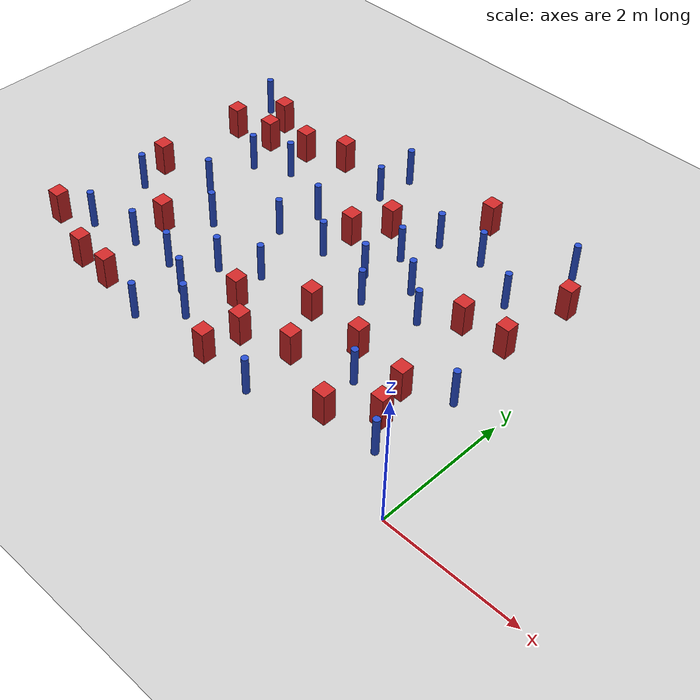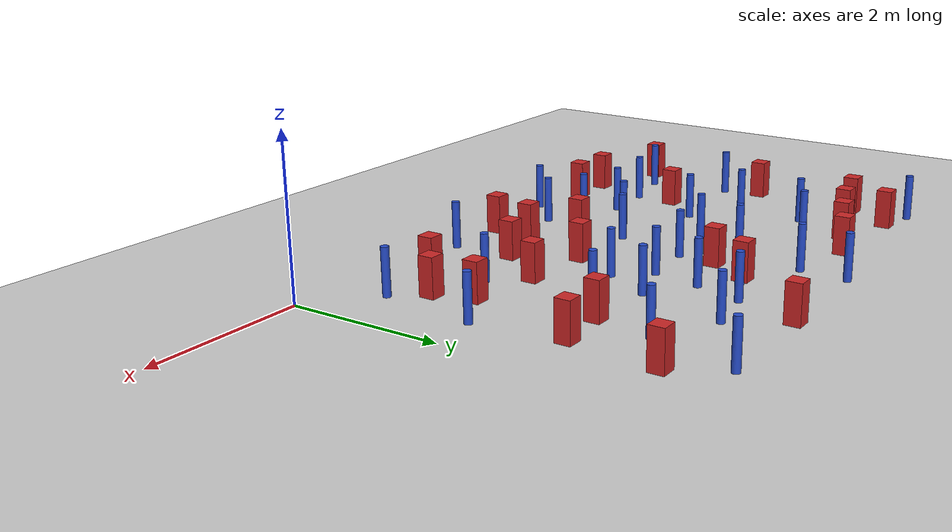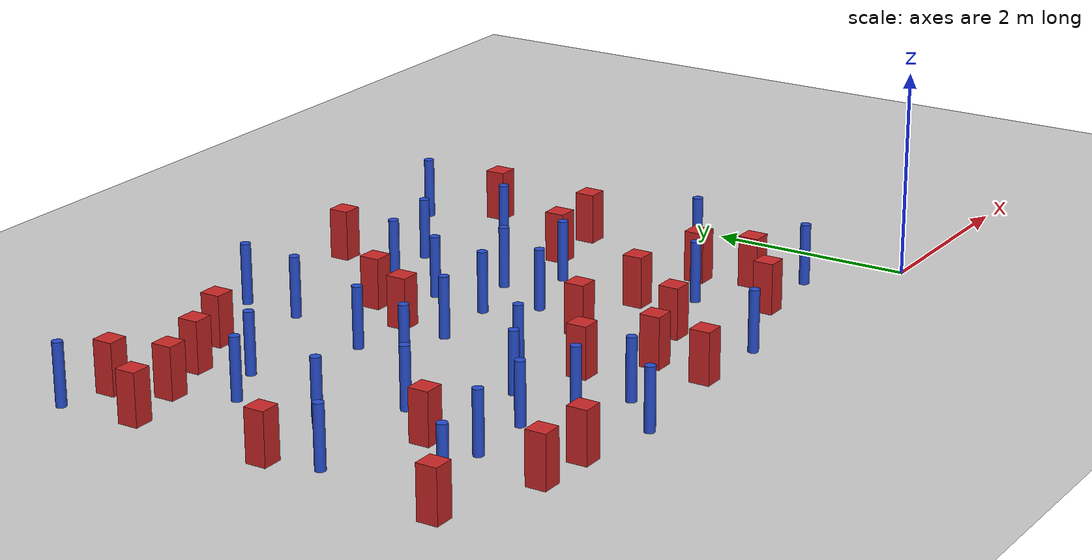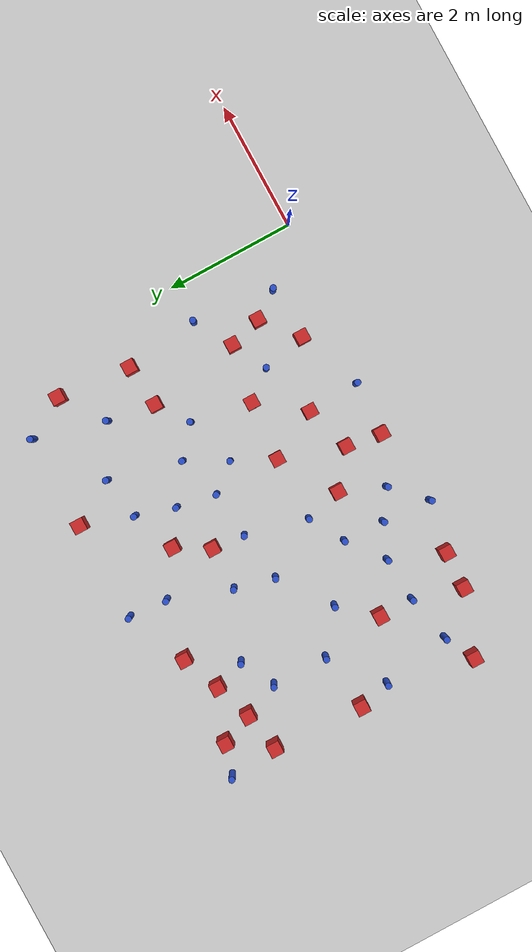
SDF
<sdf version="1.6">
 <world name="default">
  <model name="ground_plane">
   <static>1</static>
   <link name="link">
    <collision name="collision">
     <geometry><plane><normal>0 0 1</normal><size>100 100</size></plane></geometry>
     <surface><friction><ode><mu>100</mu><mu2>50</mu2></ode></friction></surface>
    </collision>
    <visual name="visual">
     <cast_shadows>0</cast_shadows>
     <geometry><plane><normal>0 0 1</normal><size>100 100</size></plane></geometry>
     <material>
      <ambient>1.0 1.0 1.0 1.0</ambient>
      <diffuse>0.8 0.8 0.8 1.0</diffuse>
      <specular>0.01 0.01 0.01 1.000000</specular>
     </material>
    </visual>
   </link>
  </model>
  <model name="pole_obstacle1">
   <static>true</static>
   <pose>-4.53239259562 2.68405552676 7.38925637345e-09 -8.47170692798e-08 1.24976764937e-08 -1.74513093023e-07</pose>
   <link name="link">
    <pose>0 0 0.3 0 -0 0</pose>
    <inertial>
     <mass>1</mass>
     <inertia><ixx>0.145833</ixx><ixy>0</ixy><ixz>0</ixz><iyy>0.145833</iyy><iyz>0</iyz><izz>0.125</izz></inertia>
    </inertial>
    <collision name="collision">
     <geometry><cylinder><radius>0.05</radius><length>.6</length></cylinder></geometry>
    </collision>
    <visual name="visual">
     <geometry><cylinder><radius>0.05</radius><length>.6</length></cylinder></geometry>
     <material>
      <script><name>Gazebo/Blue</name><uri>file://media/materials/scripts/gazebo.material</uri></script>
     </material>
    </visual>
   </link>
  </model>
  <model name="pole_obstacle4">
   <static>true</static>
   <pose>-1.00049105903 4.87308313826 7.38925637345e-09 -8.47170692799e-08 1.2497676505e-08 -1.74513093018e-07</pose>
   <link name="link">
    <pose>0 0 0.3 0 -0 0</pose>
    <inertial>
     <mass>1</mass>
     <inertia><ixx>0.145833</ixx><ixy>0</ixy><ixz>0</ixz><iyy>0.145833</iyy><iyz>0</iyz><izz>0.125</izz></inertia>
    </inertial>
    <collision name="collision">
     <geometry><cylinder><radius>0.05</radius><length>.6</length></cylinder></geometry>
    </collision>
    <visual name="visual">
     <geometry><cylinder><radius>0.05</radius><length>.6</length></cylinder></geometry>
     <material>
      <script><name>Gazebo/Blue</name><uri>file://media/materials/scripts/gazebo.material</uri></script>
     </material>
    </visual>
   </link>
  </model>
  <model name="pole_obstacle5">
   <static>true</static>
   <pose>-5.31654070944 2.11592072659 7.38925637345e-09 -8.47170692798e-08 1.24976764937e-08 -1.74513093023e-07</pose>
   <link name="link">
    <pose>0 0 0.3 0 -0 0</pose>
    <inertial>
     <mass>1</mass>
     <inertia><ixx>0.145833</ixx><ixy>0</ixy><ixz>0</ixz><iyy>0.145833</iyy><iyz>0</iyz><izz>0.125</izz></inertia>
    </inertial>
    <collision name="collision">
     <geometry><cylinder><radius>0.05</radius><length>.6</length></cylinder></geometry>
    </collision>
    <visual name="visual">
     <geometry><cylinder><radius>0.05</radius><length>.6</length></cylinder></geometry>
     <material>
      <script><name>Gazebo/Blue</name><uri>file://media/materials/scripts/gazebo.material</uri></script>
     </material>
    </visual>
   </link>
  </model>
  <model name="square_post_obstacle7">
   <static>true</static>
   <pose>-5.77643210052 1.59069159847 1.91545236811e-07 -7.35059704564e-06 1.12565212e-07 2.39332434364e-05</pose>
   <link name="link">
    <pose>0 0 0.25 0 -0 0</pose>
    <inertial>
     <mass>100</mass>
     <inertia>
      <ixx>0.166667</ixx>
      <ixy>0</ixy>
      <ixz>0</ixz>
      <iyy>0.166667</iyy>
      <iyz>0</iyz>
      <izz>0.166667</izz>
     </inertia>
    </inertial>
    <collision name="collision"><geometry><box><size>.2 .2 .5</size></box></geometry></collision>
    <visual name="visual">
     <geometry><box><size>.2 .2 .5</size></box></geometry>
     <material>
      <script><name>Gazebo/Red</name><uri>file://media/materials/scripts/gazebo.material</uri></script>
     </material>
    </visual>
   </link>
  </model>
  <model name="square_post_obstacle12">
   <static>true</static>
   <pose>-1.58455548169 0.633229365497 1.91545236811e-07 -7.35059704564e-06 1.12565212e-07 2.39332434364e-05</pose>
   <link name="link">
    <pose>0 0 0.25 0 -0 0</pose>
    <inertial>
     <mass>100</mass>
     <inertia>
      <ixx>0.166667</ixx>
      <ixy>0</ixy>
      <ixz>0</ixz>
      <iyy>0.166667</iyy>
      <iyz>0</iyz>
      <izz>0.166667</izz>
     </inertia>
    </inertial>
    <collision name="collision"><geometry><box><size>.2 .2 .5</size></box></geometry></collision>
    <visual name="visual">
     <geometry><box><size>.2 .2 .5</size></box></geometry>
     <material>
      <script><name>Gazebo/Red</name><uri>file://media/materials/scripts/gazebo.material</uri></script>
     </material>
    </visual>
   </link>
  </model>
  <model name="square_post_obstacle13">
   <static>true</static>
   <pose>-4.95018046901 4.452941867 1.91545236811e-07 -7.35059704564e-06 1.12565212e-07 2.39332434364e-05</pose>
   <link name="link">
    <pose>0 0 0.25 0 -0 0</pose>
    <inertial>
     <mass>100</mass>
     <inertia>
      <ixx>0.166667</ixx>
      <ixy>0</ixy>
      <ixz>0</ixz>
      <iyy>0.166667</iyy>
      <iyz>0</iyz>
      <izz>0.166667</izz>
     </inertia>
    </inertial>
    <collision name="collision"><geometry><box><size>.2 .2 .5</size></box></geometry></collision>
    <visual name="visual">
     <geometry><box><size>.2 .2 .5</size></box></geometry>
     <material>
      <script><name>Gazebo/Red</name><uri>file://media/materials/scripts/gazebo.material</uri></script>
     </material>
    </visual>
   </link>
  </model>
  <model name="pole_obstacle18">
   <static>true</static>
   <pose>-0.608284305371 1.93709716667 7.38925637345e-09 -8.47170692799e-08 1.24976765033e-08 -1.7451309302e-07</pose>
   <link name="link">
    <pose>0 0 0.3 0 -0 0</pose>
    <inertial>
     <mass>1</mass>
     <inertia><ixx>0.145833</ixx><ixy>0</ixy><ixz>0</ixz><iyy>0.145833</iyy><iyz>0</iyz><izz>0.125</izz></inertia>
    </inertial>
    <collision name="collision">
     <geometry><cylinder><radius>0.05</radius><length>.6</length></cylinder></geometry>
    </collision>
    <visual name="visual">
     <geometry><cylinder><radius>0.05</radius><length>.6</length></cylinder></geometry>
     <material>
      <script><name>Gazebo/Blue</name><uri>file://media/materials/scripts/gazebo.material</uri></script>
     </material>
    </visual>
   </link>
  </model>
  <model name="square_post_obstacle29">
   <static>true</static>
   <pose>-6.81865044421 2.47655447891 1.91545236811e-07 -7.35059704564e-06 1.12565212e-07 2.39332434364e-05</pose>
   <link name="link">
    <pose>0 0 0.25 0 -0 0</pose>
    <inertial>
     <mass>100</mass>
     <inertia>
      <ixx>0.166667</ixx>
      <ixy>0</ixy>
      <ixz>0</ixz>
      <iyy>0.166667</iyy>
      <iyz>0</iyz>
      <izz>0.166667</izz>
     </inertia>
    </inertial>
    <collision name="collision"><geometry><box><size>.2 .2 .5</size></box></geometry></collision>
    <visual name="visual">
     <geometry><box><size>.2 .2 .5</size></box></geometry>
     <material>
      <script><name>Gazebo/Red</name><uri>file://media/materials/scripts/gazebo.material</uri></script>
     </material>
    </visual>
   </link>
  </model>
  <model name="square_post_obstacle31">
   <static>true</static>
   <pose>-2.99724778428 1.81902709371 1.91545236811e-07 -7.35059704564e-06 1.12565212e-07 2.39332434364e-05</pose>
   <link name="link">
    <pose>0 0 0.25 0 -0 0</pose>
    <inertial>
     <mass>100</mass>
     <inertia>
      <ixx>0.166667</ixx>
      <ixy>0</ixy>
      <ixz>0</ixz>
      <iyy>0.166667</iyy>
      <iyz>0</iyz>
      <izz>0.166667</izz>
     </inertia>
    </inertial>
    <collision name="collision"><geometry><box><size>.2 .2 .5</size></box></geometry></collision>
    <visual name="visual">
     <geometry><box><size>.2 .2 .5</size></box></geometry>
     <material>
      <script><name>Gazebo/Red</name><uri>file://media/materials/scripts/gazebo.material</uri></script>
     </material>
    </visual>
   </link>
  </model>
  <model name="pole_obstacle25">
   <static>true</static>
   <pose>-3.99785983709 1.83050828539 7.38925637345e-09 -8.47170692808e-08 1.24976765605e-08 -1.74513093e-07</pose>
   <link name="link">
    <pose>0 0 0.3 0 -0 0</pose>
    <inertial>
     <mass>1</mass>
     <inertia><ixx>0.145833</ixx><ixy>0</ixy><ixz>0</ixz><iyy>0.145833</iyy><iyz>0</iyz><izz>0.125</izz></inertia>
    </inertial>
    <collision name="collision">
     <geometry><cylinder><radius>0.05</radius><length>.6</length></cylinder></geometry>
    </collision>
    <visual name="visual">
     <geometry><cylinder><radius>0.05</radius><length>.6</length></cylinder></geometry>
     <material>
      <script><name>Gazebo/Blue</name><uri>file://media/materials/scripts/gazebo.material</uri></script>
     </material>
    </visual>
   </link>
  </model>
  <model name="pole_obstacle31">
   <static>true</static>
   <pose>-5.38893590775 3.73306374062 7.38925637345e-09 -8.47170692798e-08 1.24976764937e-08 -1.74513093023e-07</pose>
   <link name="link">
    <pose>0 0 0.3 0 -0 0</pose>
    <inertial>
     <mass>1</mass>
     <inertia><ixx>0.145833</ixx><ixy>0</ixy><ixz>0</ixz><iyy>0.145833</iyy><iyz>0</iyz><izz>0.125</izz></inertia>
    </inertial>
    <collision name="collision">
     <geometry><cylinder><radius>0.05</radius><length>.6</length></cylinder></geometry>
    </collision>
    <visual name="visual">
     <geometry><cylinder><radius>0.05</radius><length>.6</length></cylinder></geometry>
     <material>
      <script><name>Gazebo/Blue</name><uri>file://media/materials/scripts/gazebo.material</uri></script>
     </material>
    </visual>
   </link>
  </model>
  <model name="pole_obstacle34">
   <static>true</static>
   <pose>-1.29308364775 3.76616444473 7.38925637345e-09 -8.47170692799e-08 1.24976765053e-08 -1.74513093017e-07</pose>
   <link name="link">
    <pose>0 0 0.3 0 -0 0</pose>
    <inertial>
     <mass>1</mass>
     <inertia><ixx>0.145833</ixx><ixy>0</ixy><ixz>0</ixz><iyy>0.145833</iyy><iyz>0</iyz><izz>0.125</izz></inertia>
    </inertial>
    <collision name="collision">
     <geometry><cylinder><radius>0.05</radius><length>.6</length></cylinder></geometry>
    </collision>
    <visual name="visual">
     <geometry><cylinder><radius>0.05</radius><length>.6</length></cylinder></geometry>
     <material>
      <script><name>Gazebo/Blue</name><uri>file://media/materials/scripts/gazebo.material</uri></script>
     </material>
    </visual>
   </link>
  </model>
  <model name="pole_obstacle36">
   <static>true</static>
   <pose>-5.92853335825 2.59436262317 7.38925637345e-09 -8.47170692798e-08 1.24976764937e-08 -1.74513093023e-07</pose>
   <link name="link">
    <pose>0 0 0.3 0 -0 0</pose>
    <inertial>
     <mass>1</mass>
     <inertia><ixx>0.145833</ixx><ixy>0</ixy><ixz>0</ixz><iyy>0.145833</iyy><iyz>0</iyz><izz>0.125</izz></inertia>
    </inertial>
    <collision name="collision">
     <geometry><cylinder><radius>0.05</radius><length>.6</length></cylinder></geometry>
    </collision>
    <visual name="visual">
     <geometry><cylinder><radius>0.05</radius><length>.6</length></cylinder></geometry>
     <material>
      <script><name>Gazebo/Blue</name><uri>file://media/materials/scripts/gazebo.material</uri></script>
     </material>
    </visual>
   </link>
  </model>
  <model name="square_post_obstacle36">
   <static>true</static>
   <pose>-2.46472115762 4.86826933062 1.91545236811e-07 -7.35059704564e-06 1.12565212e-07 2.39332434364e-05</pose>
   <link name="link">
    <pose>0 0 0.25 0 -0 0</pose>
    <inertial>
     <mass>100</mass>
     <inertia>
      <ixx>0.166667</ixx>
      <ixy>0</ixy>
      <ixz>0</ixz>
      <iyy>0.166667</iyy>
      <iyz>0</iyz>
      <izz>0.166667</izz>
     </inertia>
    </inertial>
    <collision name="collision"><geometry><box><size>.2 .2 .5</size></box></geometry></collision>
    <visual name="visual">
     <geometry><box><size>.2 .2 .5</size></box></geometry>
     <material>
      <script><name>Gazebo/Red</name><uri>file://media/materials/scripts/gazebo.material</uri></script>
     </material>
    </visual>
   </link>
  </model>
  <model name="square_post_obstacle47">
   <static>true</static>
   <pose>-5.99458879497 0.304640450156 1.91545236811e-07 -7.35059704564e-06 1.12565212e-07 2.39332434364e-05</pose>
   <link name="link">
    <pose>0 0 0.25 0 -0 0</pose>
    <inertial>
     <mass>100</mass>
     <inertia>
      <ixx>0.166667</ixx>
      <ixy>0</ixy>
      <ixz>0</ixz>
      <iyy>0.166667</iyy>
      <iyz>0</iyz>
      <izz>0.166667</izz>
     </inertia>
    </inertial>
    <collision name="collision"><geometry><box><size>.2 .2 .5</size></box></geometry></collision>
    <visual name="visual">
     <geometry><box><size>.2 .2 .5</size></box></geometry>
     <material>
      <script><name>Gazebo/Red</name><uri>file://media/materials/scripts/gazebo.material</uri></script>
     </material>
    </visual>
   </link>
  </model>
  <model name="pole_obstacle46">
   <static>true</static>
   <pose>-2.73054152119 4.08016845126 7.38925637345e-09 -8.47170692798e-08 1.24976765033e-08 -1.74513093019e-07</pose>
   <link name="link">
    <pose>0 0 0.3 0 -0 0</pose>
    <inertial>
     <mass>1</mass>
     <inertia><ixx>0.145833</ixx><ixy>0</ixy><ixz>0</ixz><iyy>0.145833</iyy><iyz>0</iyz><izz>0.125</izz></inertia>
    </inertial>
    <collision name="collision">
     <geometry><cylinder><radius>0.05</radius><length>.6</length></cylinder></geometry>
    </collision>
    <visual name="visual">
     <geometry><cylinder><radius>0.05</radius><length>.6</length></cylinder></geometry>
     <material>
      <script><name>Gazebo/Blue</name><uri>file://media/materials/scripts/gazebo.material</uri></script>
     </material>
    </visual>
   </link>
  </model>
  <model name="pole_obstacle48">
   <static>true</static>
   <pose>-2.34892153435 3.06817895832 7.38925637345e-09 -8.47170692798e-08 1.24976764939e-08 -1.74513093025e-07</pose>
   <link name="link">
    <pose>0 0 0.3 0 -0 0</pose>
    <inertial>
     <mass>1</mass>
     <inertia><ixx>0.145833</ixx><ixy>0</ixy><ixz>0</ixz><iyy>0.145833</iyy><iyz>0</iyz><izz>0.125</izz></inertia>
    </inertial>
    <collision name="collision">
     <geometry><cylinder><radius>0.05</radius><length>.6</length></cylinder></geometry>
    </collision>
    <visual name="visual">
     <geometry><cylinder><radius>0.05</radius><length>.6</length></cylinder></geometry>
     <material>
      <script><name>Gazebo/Blue</name><uri>file://media/materials/scripts/gazebo.material</uri></script>
     </material>
    </visual>
   </link>
  </model>
  <model name="pole_obstacle50">
   <static>true</static>
   <pose>-2.91412701705 3.47398692194 7.38925637345e-09 -8.47170692798e-08 1.24976764939e-08 -1.74513093025e-07</pose>
   <link name="link">
    <pose>0 0 0.3 0 -0 0</pose>
    <inertial>
     <mass>1</mass>
     <inertia><ixx>0.145833</ixx><ixy>0</ixy><ixz>0</ixz><iyy>0.145833</iyy><iyz>0</iyz><izz>0.125</izz></inertia>
    </inertial>
    <collision name="collision">
     <geometry><cylinder><radius>0.05</radius><length>.6</length></cylinder></geometry>
    </collision>
    <visual name="visual">
     <geometry><cylinder><radius>0.05</radius><length>.6</length></cylinder></geometry>
     <material>
      <script><name>Gazebo/Blue</name><uri>file://media/materials/scripts/gazebo.material</uri></script>
     </material>
    </visual>
   </link>
  </model>
  <model name="pole_obstacle60">
   <static>true</static>
   <pose>-5.77999652289 1.05922337006 7.38925637345e-09 -8.471706928e-08 1.24976765134e-08 -1.74513093015e-07</pose>
   <link name="link">
    <pose>0 0 0.3 0 -0 0</pose>
    <inertial>
     <mass>1</mass>
     <inertia><ixx>0.145833</ixx><ixy>0</ixy><ixz>0</ixz><iyy>0.145833</iyy><iyz>0</iyz><izz>0.125</izz></inertia>
    </inertial>
    <collision name="collision">
     <geometry><cylinder><radius>0.05</radius><length>.6</length></cylinder></geometry>
    </collision>
    <visual name="visual">
     <geometry><cylinder><radius>0.05</radius><length>.6</length></cylinder></geometry>
     <material>
      <script><name>Gazebo/Blue</name><uri>file://media/materials/scripts/gazebo.material</uri></script>
     </material>
    </visual>
   </link>
  </model>
  <model name="pole_obstacle62">
   <static>true</static>
   <pose>-1.89879869739 2.68715867315 7.38925637345e-09 -8.47170692799e-08 1.24976765053e-08 -1.74513093017e-07</pose>
   <link name="link">
    <pose>0 0 0.3 0 -0 0</pose>
    <inertial>
     <mass>1</mass>
     <inertia><ixx>0.145833</ixx><ixy>0</ixy><ixz>0</ixz><iyy>0.145833</iyy><iyz>0</iyz><izz>0.125</izz></inertia>
    </inertial>
    <collision name="collision">
     <geometry><cylinder><radius>0.05</radius><length>.6</length></cylinder></geometry>
    </collision>
    <visual name="visual">
     <geometry><cylinder><radius>0.05</radius><length>.6</length></cylinder></geometry>
     <material>
      <script><name>Gazebo/Blue</name><uri>file://media/materials/scripts/gazebo.material</uri></script>
     </material>
    </visual>
   </link>
  </model>
  <model name="square_post_obstacle67">
   <static>true</static>
   <pose>-3.3198267387 0.831762896006 1.91545236811e-07 -7.35059704564e-06 1.12565212e-07 2.39332434364e-05</pose>
   <link name="link">
    <pose>0 0 0.25 0 -0 0</pose>
    <inertial>
     <mass>100</mass>
     <inertia>
      <ixx>0.166667</ixx>
      <ixy>0</ixy>
      <ixz>0</ixz>
      <iyy>0.166667</iyy>
      <iyz>0</iyz>
      <izz>0.166667</izz>
     </inertia>
    </inertial>
    <collision name="collision"><geometry><box><size>.2 .2 .5</size></box></geometry></collision>
    <visual name="visual">
     <geometry><box><size>.2 .2 .5</size></box></geometry>
     <material>
      <script><name>Gazebo/Red</name><uri>file://media/materials/scripts/gazebo.material</uri></script>
     </material>
    </visual>
   </link>
  </model>
  <model name="pole_obstacle65">
   <static>true</static>
   <pose>-4.01013038914 4.86463928574 7.38925637345e-09 -8.47170692795e-08 1.24976764731e-08 -1.74513093035e-07</pose>
   <link name="link">
    <pose>0 0 0.3 0 -0 0</pose>
    <inertial>
     <mass>1</mass>
     <inertia><ixx>0.145833</ixx><ixy>0</ixy><ixz>0</ixz><iyy>0.145833</iyy><iyz>0</iyz><izz>0.125</izz></inertia>
    </inertial>
    <collision name="collision">
     <geometry><cylinder><radius>0.05</radius><length>.6</length></cylinder></geometry>
    </collision>
    <visual name="visual">
     <geometry><cylinder><radius>0.05</radius><length>.6</length></cylinder></geometry>
     <material>
      <script><name>Gazebo/Blue</name><uri>file://media/materials/scripts/gazebo.material</uri></script>
     </material>
    </visual>
   </link>
  </model>
  <model name="pole_obstacle67">
   <static>true</static>
   <pose>-3.02625092537 2.86150619519 7.38925637345e-09 -8.47170692798e-08 1.24976764939e-08 -1.74513093025e-07</pose>
   <link name="link">
    <pose>0 0 0.3 0 -0 0</pose>
    <inertial>
     <mass>1</mass>
     <inertia><ixx>0.145833</ixx><ixy>0</ixy><ixz>0</ixz><iyy>0.145833</iyy><iyz>0</iyz><izz>0.125</izz></inertia>
    </inertial>
    <collision name="collision">
     <geometry><cylinder><radius>0.05</radius><length>.6</length></cylinder></geometry>
    </collision>
    <visual name="visual">
     <geometry><cylinder><radius>0.05</radius><length>.6</length></cylinder></geometry>
     <material>
      <script><name>Gazebo/Blue</name><uri>file://media/materials/scripts/gazebo.material</uri></script>
     </material>
    </visual>
   </link>
  </model>
  <model name="square_post_obstacle76">
   <static>true</static>
   <pose>-5.41425574644 0.279807918439 1.91545236811e-07 -7.35059704564e-06 1.12565212e-07 2.39332434364e-05</pose>
   <link name="link">
    <pose>0 0 0.25 0 -0 0</pose>
    <inertial>
     <mass>100</mass>
     <inertia>
      <ixx>0.166667</ixx>
      <ixy>0</ixy>
      <ixz>0</ixz>
      <iyy>0.166667</iyy>
      <iyz>0</iyz>
      <izz>0.166667</izz>
     </inertia>
    </inertial>
    <collision name="collision"><geometry><box><size>.2 .2 .5</size></box></geometry></collision>
    <visual name="visual">
     <geometry><box><size>.2 .2 .5</size></box></geometry>
     <material>
      <script><name>Gazebo/Red</name><uri>file://media/materials/scripts/gazebo.material</uri></script>
     </material>
    </visual>
   </link>
  </model>
  <model name="pole_obstacle78">
   <static>true</static>
   <pose>-3.75777914976 2.79001836088 7.38925637345e-09 -8.47170692798e-08 1.24976764939e-08 -1.74513093025e-07</pose>
   <link name="link">
    <pose>0 0 0.3 0 -0 0</pose>
    <inertial>
     <mass>1</mass>
     <inertia><ixx>0.145833</ixx><ixy>0</ixy><ixz>0</ixz><iyy>0.145833</iyy><iyz>0</iyz><izz>0.125</izz></inertia>
    </inertial>
    <collision name="collision">
     <geometry><cylinder><radius>0.05</radius><length>.6</length></cylinder></geometry>
    </collision>
    <visual name="visual">
     <geometry><cylinder><radius>0.05</radius><length>.6</length></cylinder></geometry>
     <material>
      <script><name>Gazebo/Blue</name><uri>file://media/materials/scripts/gazebo.material</uri></script>
     </material>
    </visual>
   </link>
  </model>
  <model name="pole_obstacle83">
   <static>true</static>
   <pose>-6.52045655925 0.899742723144 7.38925637345e-09 -8.47170692799e-08 1.24976765038e-08 -1.74513093018e-07</pose>
   <link name="link">
    <pose>0 0 0.3 0 -0 0</pose>
    <inertial>
     <mass>1</mass>
     <inertia><ixx>0.145833</ixx><ixy>0</ixy><ixz>0</ixz><iyy>0.145833</iyy><iyz>0</iyz><izz>0.125</izz></inertia>
    </inertial>
    <collision name="collision">
     <geometry><cylinder><radius>0.05</radius><length>.6</length></cylinder></geometry>
    </collision>
    <visual name="visual">
     <geometry><cylinder><radius>0.05</radius><length>.6</length></cylinder></geometry>
     <material>
      <script><name>Gazebo/Blue</name><uri>file://media/materials/scripts/gazebo.material</uri></script>
     </material>
    </visual>
   </link>
  </model>
  <model name="pole_obstacle91">
   <static>true</static>
   <pose>-0.756997742739 0.672421142824 7.38925637345e-09 -8.47170692799e-08 1.24976765008e-08 -1.7451309302e-07</pose>
   <link name="link">
    <pose>0 0 0.3 0 -0 0</pose>
    <inertial>
     <mass>1</mass>
     <inertia><ixx>0.145833</ixx><ixy>0</ixy><ixz>0</ixz><iyy>0.145833</iyy><iyz>0</iyz><izz>0.125</izz></inertia>
    </inertial>
    <collision name="collision">
     <geometry><cylinder><radius>0.05</radius><length>.6</length></cylinder></geometry>
    </collision>
    <visual name="visual">
     <geometry><cylinder><radius>0.05</radius><length>.6</length></cylinder></geometry>
     <material>
      <script><name>Gazebo/Blue</name><uri>file://media/materials/scripts/gazebo.material</uri></script>
     </material>
    </visual>
   </link>
  </model>
  <model name="pole_obstacle95">
   <static>true</static>
   <pose>-2.06515445439 4.18845876146 7.38925637345e-09 -8.47170692798e-08 1.24976765033e-08 -1.74513093019e-07</pose>
   <link name="link">
    <pose>0 0 0.3 0 -0 0</pose>
    <inertial>
     <mass>1</mass>
     <inertia><ixx>0.145833</ixx><ixy>0</ixy><ixz>0</ixz><iyy>0.145833</iyy><iyz>0</iyz><izz>0.125</izz></inertia>
    </inertial>
    <collision name="collision">
     <geometry><cylinder><radius>0.05</radius><length>.6</length></cylinder></geometry>
    </collision>
    <visual name="visual">
     <geometry><cylinder><radius>0.05</radius><length>.6</length></cylinder></geometry>
     <material>
      <script><name>Gazebo/Blue</name><uri>file://media/materials/scripts/gazebo.material</uri></script>
     </material>
    </visual>
   </link>
  </model>
  <model name="square_post_obstacle92">
   <static>true</static>
   <pose>-3.70284334285 3.29658415789 1.91545236811e-07 -7.35059704564e-06 1.12565212e-07 2.39332434364e-05</pose>
   <link name="link">
    <pose>0 0 0.25 0 -0 0</pose>
    <inertial>
     <mass>100</mass>
     <inertia>
      <ixx>0.166667</ixx>
      <ixy>0</ixy>
      <ixz>0</ixz>
      <iyy>0.166667</iyy>
      <iyz>0</iyz>
      <izz>0.166667</izz>
     </inertia>
    </inertial>
    <collision name="collision"><geometry><box><size>.2 .2 .5</size></box></geometry></collision>
    <visual name="visual">
     <geometry><box><size>.2 .2 .5</size></box></geometry>
     <material>
      <script><name>Gazebo/Red</name><uri>file://media/materials/scripts/gazebo.material</uri></script>
     </material>
    </visual>
   </link>
  </model>
  <model name="pole_obstacle113">
   <static>true</static>
   <pose>-5.09091048719 1.10038553286 7.38925637345e-09 -8.471706928e-08 1.24976765134e-08 -1.74513093015e-07</pose>
   <link name="link">
    <pose>0 0 0.3 0 -0 0</pose>
    <inertial>
     <mass>1</mass>
     <inertia><ixx>0.145833</ixx><ixy>0</ixy><ixz>0</ixz><iyy>0.145833</iyy><iyz>0</iyz><izz>0.125</izz></inertia>
    </inertial>
    <collision name="collision">
     <geometry><cylinder><radius>0.05</radius><length>.6</length></cylinder></geometry>
    </collision>
    <visual name="visual">
     <geometry><cylinder><radius>0.05</radius><length>.6</length></cylinder></geometry>
     <material>
      <script><name>Gazebo/Blue</name><uri>file://media/materials/scripts/gazebo.material</uri></script>
     </material>
    </visual>
   </link>
  </model>
  <model name="pole_obstacle115">
   <static>true</static>
   <pose>-4.53719206998 1.52522071958 7.38925637345e-09 -8.471706928e-08 1.24976765134e-08 -1.74513093015e-07</pose>
   <link name="link">
    <pose>0 0 0.3 0 -0 0</pose>
    <inertial>
     <mass>1</mass>
     <inertia><ixx>0.145833</ixx><ixy>0</ixy><ixz>0</ixz><iyy>0.145833</iyy><iyz>0</iyz><izz>0.125</izz></inertia>
    </inertial>
    <collision name="collision">
     <geometry><cylinder><radius>0.05</radius><length>.6</length></cylinder></geometry>
    </collision>
    <visual name="visual">
     <geometry><cylinder><radius>0.05</radius><length>.6</length></cylinder></geometry>
     <material>
      <script><name>Gazebo/Blue</name><uri>file://media/materials/scripts/gazebo.material</uri></script>
     </material>
    </visual>
   </link>
  </model>
  <model name="pole_obstacle117">
   <static>true</static>
   <pose>-6.70484782002 1.97888143527 7.38925637345e-09 -8.471706928e-08 1.24976765177e-08 -1.74513093012e-07</pose>
   <link name="link">
    <pose>0 0 0.3 0 -0 0</pose>
    <inertial>
     <mass>1</mass>
     <inertia><ixx>0.145833</ixx><ixy>0</ixy><ixz>0</ixz><iyy>0.145833</iyy><iyz>0</iyz><izz>0.125</izz></inertia>
    </inertial>
    <collision name="collision">
     <geometry><cylinder><radius>0.05</radius><length>.6</length></cylinder></geometry>
    </collision>
    <visual name="visual">
     <geometry><cylinder><radius>0.05</radius><length>.6</length></cylinder></geometry>
     <material>
      <script><name>Gazebo/Blue</name><uri>file://media/materials/scripts/gazebo.material</uri></script>
     </material>
    </visual>
   </link>
  </model>
  <model name="square_post_obstacle114">
   <static>true</static>
   <pose>-6.13490418724 4.01812459866 1.91545236811e-07 -7.35059704564e-06 1.12565212e-07 2.39332434364e-05</pose>
   <link name="link">
    <pose>0 0 0.25 0 -0 0</pose>
    <inertial>
     <mass>100</mass>
     <inertia>
      <ixx>0.166667</ixx>
      <ixy>0</ixy>
      <ixz>0</ixz>
      <iyy>0.166667</iyy>
      <iyz>0</iyz>
      <izz>0.166667</izz>
     </inertia>
    </inertial>
    <collision name="collision"><geometry><box><size>.2 .2 .5</size></box></geometry></collision>
    <visual name="visual">
     <geometry><box><size>.2 .2 .5</size></box></geometry>
     <material>
      <script><name>Gazebo/Red</name><uri>file://media/materials/scripts/gazebo.material</uri></script>
     </material>
    </visual>
   </link>
  </model>
  <model name="square_post_obstacle115">
   <static>true</static>
   <pose>-5.54800419653 4.21459515011 1.91545236811e-07 -7.35059704564e-06 1.12565212e-07 2.39332434364e-05</pose>
   <link name="link">
    <pose>0 0 0.25 0 -0 0</pose>
    <inertial>
     <mass>100</mass>
     <inertia>
      <ixx>0.166667</ixx>
      <ixy>0</ixy>
      <ixz>0</ixz>
      <iyy>0.166667</iyy>
      <iyz>0</iyz>
      <izz>0.166667</izz>
     </inertia>
    </inertial>
    <collision name="collision"><geometry><box><size>.2 .2 .5</size></box></geometry></collision>
    <visual name="visual">
     <geometry><box><size>.2 .2 .5</size></box></geometry>
     <material>
      <script><name>Gazebo/Red</name><uri>file://media/materials/scripts/gazebo.material</uri></script>
     </material>
    </visual>
   </link>
  </model>
  <model name="pole_obstacle135">
   <static>true</static>
   <pose>-2.6885381306 2.44774455904 7.38925637345e-09 -8.47170692798e-08 1.24976764939e-08 -1.74513093025e-07</pose>
   <link name="link">
    <pose>0 0 0.3 0 -0 0</pose>
    <inertial>
     <mass>1</mass>
     <inertia><ixx>0.145833</ixx><ixy>0</ixy><ixz>0</ixz><iyy>0.145833</iyy><iyz>0</iyz><izz>0.125</izz></inertia>
    </inertial>
    <collision name="collision">
     <geometry><cylinder><radius>0.05</radius><length>.6</length></cylinder></geometry>
    </collision>
    <visual name="visual">
     <geometry><cylinder><radius>0.05</radius><length>.6</length></cylinder></geometry>
     <material>
      <script><name>Gazebo/Blue</name><uri>file://media/materials/scripts/gazebo.material</uri></script>
     </material>
    </visual>
   </link>
  </model>
  <model name="pole_obstacle142">
   <static>true</static>
   <pose>-5.91850453429 3.46677077694 7.38925637345e-09 -8.47170692798e-08 1.24976764937e-08 -1.74513093023e-07</pose>
   <link name="link">
    <pose>0 0 0.3 0 -0 0</pose>
    <inertial>
     <mass>1</mass>
     <inertia><ixx>0.145833</ixx><ixy>0</ixy><ixz>0</ixz><iyy>0.145833</iyy><iyz>0</iyz><izz>0.125</izz></inertia>
    </inertial>
    <collision name="collision">
     <geometry><cylinder><radius>0.05</radius><length>.6</length></cylinder></geometry>
    </collision>
    <visual name="visual">
     <geometry><cylinder><radius>0.05</radius><length>.6</length></cylinder></geometry>
     <material>
      <script><name>Gazebo/Blue</name><uri>file://media/materials/scripts/gazebo.material</uri></script>
     </material>
    </visual>
   </link>
  </model>
  <model name="pole_obstacle144">
   <static>true</static>
   <pose>-1.73515302161 1.31883680867 7.38925637345e-09 -8.471706928e-08 1.24976765079e-08 -1.74513093017e-07</pose>
   <link name="link">
    <pose>0 0 0.3 0 -0 0</pose>
    <inertial>
     <mass>1</mass>
     <inertia><ixx>0.145833</ixx><ixy>0</ixy><ixz>0</ixz><iyy>0.145833</iyy><iyz>0</iyz><izz>0.125</izz></inertia>
    </inertial>
    <collision name="collision">
     <geometry><cylinder><radius>0.05</radius><length>.6</length></cylinder></geometry>
    </collision>
    <visual name="visual">
     <geometry><cylinder><radius>0.05</radius><length>.6</length></cylinder></geometry>
     <material>
      <script><name>Gazebo/Blue</name><uri>file://media/materials/scripts/gazebo.material</uri></script>
     </material>
    </visual>
   </link>
  </model>
  <model name="pole_obstacle155">
   <static>true</static>
   <pose>-4.04971451418 4.2611822249 7.38925637345e-09 -8.47170692795e-08 1.24976764731e-08 -1.74513093035e-07</pose>
   <link name="link">
    <pose>0 0 0.3 0 -0 0</pose>
    <inertial>
     <mass>1</mass>
     <inertia><ixx>0.145833</ixx><ixy>0</ixy><ixz>0</ixz><iyy>0.145833</iyy><iyz>0</iyz><izz>0.125</izz></inertia>
    </inertial>
    <collision name="collision">
     <geometry><cylinder><radius>0.05</radius><length>.6</length></cylinder></geometry>
    </collision>
    <visual name="visual">
     <geometry><cylinder><radius>0.05</radius><length>.6</length></cylinder></geometry>
     <material>
      <script><name>Gazebo/Blue</name><uri>file://media/materials/scripts/gazebo.material</uri></script>
     </material>
    </visual>
   </link>
  </model>
  <model name="square_post_obstacle147">
   <static>true</static>
   <pose>-0.639120094416 4.24081678169 1.91545236811e-07 -7.35059704564e-06 1.12565212e-07 2.39332434364e-05</pose>
   <link name="link">
    <pose>0 0 0.25 0 -0 0</pose>
    <inertial>
     <mass>100</mass>
     <inertia>
      <ixx>0.166667</ixx>
      <ixy>0</ixy>
      <ixz>0</ixz>
      <iyy>0.166667</iyy>
      <iyz>0</iyz>
      <izz>0.166667</izz>
     </inertia>
    </inertial>
    <collision name="collision"><geometry><box><size>.2 .2 .5</size></box></geometry></collision>
    <visual name="visual">
     <geometry><box><size>.2 .2 .5</size></box></geometry>
     <material>
      <script><name>Gazebo/Red</name><uri>file://media/materials/scripts/gazebo.material</uri></script>
     </material>
    </visual>
   </link>
  </model>
  <model name="square_post_obstacle152">
   <static>true</static>
   <pose>-3.85390040428 1.26001643955 1.91545236811e-07 -7.35059704564e-06 1.12565212e-07 2.39332434364e-05</pose>
   <link name="link">
    <pose>0 0 0.25 0 -0 0</pose>
    <inertial>
     <mass>100</mass>
     <inertia>
      <ixx>0.166667</ixx>
      <ixy>0</ixy>
      <ixz>0</ixz>
      <iyy>0.166667</iyy>
      <iyz>0</iyz>
      <izz>0.166667</izz>
     </inertia>
    </inertial>
    <collision name="collision"><geometry><box><size>.2 .2 .5</size></box></geometry></collision>
    <visual name="visual">
     <geometry><box><size>.2 .2 .5</size></box></geometry>
     <material>
      <script><name>Gazebo/Red</name><uri>file://media/materials/scripts/gazebo.material</uri></script>
     </material>
    </visual>
   </link>
  </model>
  <model name="square_post_obstacle153">
   <static>true</static>
   <pose>-1.19178119111 1.59291650032 1.91545236811e-07 -7.35059704564e-06 1.12565212e-07 2.39332434364e-05</pose>
   <link name="link">
    <pose>0 0 0.25 0 -0 0</pose>
    <inertial>
     <mass>100</mass>
     <inertia>
      <ixx>0.166667</ixx>
      <ixy>0</ixy>
      <ixz>0</ixz>
      <iyy>0.166667</iyy>
      <iyz>0</iyz>
      <izz>0.166667</izz>
     </inertia>
    </inertial>
    <collision name="collision"><geometry><box><size>.2 .2 .5</size></box></geometry></collision>
    <visual name="visual">
     <geometry><box><size>.2 .2 .5</size></box></geometry>
     <material>
      <script><name>Gazebo/Red</name><uri>file://media/materials/scripts/gazebo.material</uri></script>
     </material>
    </visual>
   </link>
  </model>
  <model name="square_post_obstacle160">
   <static>true</static>
   <pose>-1.41966747961 3.02895616467 1.91545236811e-07 -7.35059704564e-06 1.12565212e-07 2.39332434364e-05</pose>
   <link name="link">
    <pose>0 0 0.25 0 -0 0</pose>
    <inertial>
     <mass>100</mass>
     <inertia>
      <ixx>0.166667</ixx>
      <ixy>0</ixy>
      <ixz>0</ixz>
      <iyy>0.166667</iyy>
      <iyz>0</iyz>
      <izz>0.166667</izz>
     </inertia>
    </inertial>
    <collision name="collision"><geometry><box><size>.2 .2 .5</size></box></geometry></collision>
    <visual name="visual">
     <geometry><box><size>.2 .2 .5</size></box></geometry>
     <material>
      <script><name>Gazebo/Red</name><uri>file://media/materials/scripts/gazebo.material</uri></script>
     </material>
    </visual>
   </link>
  </model>
  <model name="pole_obstacle169">
   <static>true</static>
   <pose>-4.135644506 0.585607089422 7.38925637345e-09 -8.47170692799e-08 1.24976765038e-08 -1.74513093018e-07</pose>
   <link name="link">
    <pose>0 0 0.3 0 -0 0</pose>
    <inertial>
     <mass>1</mass>
     <inertia><ixx>0.145833</ixx><ixy>0</ixy><ixz>0</ixz><iyy>0.145833</iyy><iyz>0</iyz><izz>0.125</izz></inertia>
    </inertial>
    <collision name="collision">
     <geometry><cylinder><radius>0.05</radius><length>.6</length></cylinder></geometry>
    </collision>
    <visual name="visual">
     <geometry><cylinder><radius>0.05</radius><length>.6</length></cylinder></geometry>
     <material>
      <script><name>Gazebo/Blue</name><uri>file://media/materials/scripts/gazebo.material</uri></script>
     </material>
    </visual>
   </link>
  </model>
  <model name="square_post_obstacle163">
   <static>true</static>
   <pose>-3.4024983133 0.280070382101 1.91545236811e-07 -7.35059704564e-06 1.12565212e-07 2.39332434364e-05</pose>
   <link name="link">
    <pose>0 0 0.25 0 -0 0</pose>
    <inertial>
     <mass>100</mass>
     <inertia>
      <ixx>0.166667</ixx>
      <ixy>0</ixy>
      <ixz>0</ixz>
      <iyy>0.166667</iyy>
      <iyz>0</iyz>
      <izz>0.166667</izz>
     </inertia>
    </inertial>
    <collision name="collision"><geometry><box><size>.2 .2 .5</size></box></geometry></collision>
    <visual name="visual">
     <geometry><box><size>.2 .2 .5</size></box></geometry>
     <material>
      <script><name>Gazebo/Red</name><uri>file://media/materials/scripts/gazebo.material</uri></script>
     </material>
    </visual>
   </link>
  </model>
  <model name="square_post_obstacle169">
   <static>true</static>
   <pose>-6.33213189253 4.50744340155 1.91545236811e-07 -7.35059704564e-06 1.12565212e-07 2.39332434364e-05</pose>
   <link name="link">
    <pose>0 0 0.25 0 -0 0</pose>
    <inertial>
     <mass>100</mass>
     <inertia>
      <ixx>0.166667</ixx>
      <ixy>0</ixy>
      <ixz>0</ixz>
      <iyy>0.166667</iyy>
      <iyz>0</iyz>
      <izz>0.166667</izz>
     </inertia>
    </inertial>
    <collision name="collision"><geometry><box><size>.2 .2 .5</size></box></geometry></collision>
    <visual name="visual">
     <geometry><box><size>.2 .2 .5</size></box></geometry>
     <material>
      <script><name>Gazebo/Red</name><uri>file://media/materials/scripts/gazebo.material</uri></script>
     </material>
    </visual>
   </link>
  </model>
  <model name="square_post_obstacle170">
   <static>true</static>
   <pose>-0.758408414459 3.09278790427 1.91545236811e-07 -7.35059704564e-06 1.12565212e-07 2.39332434364e-05</pose>
   <link name="link">
    <pose>0 0 0.25 0 -0 0</pose>
    <inertial>
     <mass>100</mass>
     <inertia>
      <ixx>0.166667</ixx>
      <ixy>0</ixy>
      <ixz>0</ixz>
      <iyy>0.166667</iyy>
      <iyz>0</iyz>
      <izz>0.166667</izz>
     </inertia>
    </inertial>
    <collision name="collision"><geometry><box><size>.2 .2 .5</size></box></geometry></collision>
    <visual name="visual">
     <geometry><box><size>.2 .2 .5</size></box></geometry>
     <material>
      <script><name>Gazebo/Red</name><uri>file://media/materials/scripts/gazebo.material</uri></script>
     </material>
    </visual>
   </link>
  </model>
  <model name="square_post_obstacle178">
   <static>true</static>
   <pose>-2.07995570709 1.75002788166 1.91545236811e-07 -7.35059704564e-06 1.12565212e-07 2.39332434364e-05</pose>
   <link name="link">
    <pose>0 0 0.25 0 -0 0</pose>
    <inertial>
     <mass>100</mass>
     <inertia>
      <ixx>0.166667</ixx>
      <ixy>0</ixy>
      <ixz>0</ixz>
      <iyy>0.166667</iyy>
      <iyz>0</iyz>
      <izz>0.166667</izz>
     </inertia>
    </inertial>
    <collision name="collision"><geometry><box><size>.2 .2 .5</size></box></geometry></collision>
    <visual name="visual">
     <geometry><box><size>.2 .2 .5</size></box></geometry>
     <material>
      <script><name>Gazebo/Red</name><uri>file://media/materials/scripts/gazebo.material</uri></script>
     </material>
    </visual>
   </link>
  </model>
  <model name="square_post_obstacle192">
   <static>true</static>
   <pose>-2.60675846869 1.05439418087 1.91545236811e-07 -7.35059704564e-06 1.12565212e-07 2.39332434364e-05</pose>
   <link name="link">
    <pose>0 0 0.25 0 -0 0</pose>
    <inertial>
     <mass>100</mass>
     <inertia>
      <ixx>0.166667</ixx>
      <ixy>0</ixy>
      <ixz>0</ixz>
      <iyy>0.166667</iyy>
      <iyz>0</iyz>
      <izz>0.166667</izz>
     </inertia>
    </inertial>
    <collision name="collision"><geometry><box><size>.2 .2 .5</size></box></geometry></collision>
    <visual name="visual">
     <geometry><box><size>.2 .2 .5</size></box></geometry>
     <material>
      <script><name>Gazebo/Red</name><uri>file://media/materials/scripts/gazebo.material</uri></script>
     </material>
    </visual>
   </link>
  </model>
  <model name="pole_obstacle198">
   <static>true</static>
   <pose>-4.56346786841 0.879629910344 7.38925637345e-09 -8.47170692799e-08 1.24976765038e-08 -1.74513093018e-07</pose>
   <link name="link">
    <pose>0 0 0.3 0 -0 0</pose>
    <inertial>
     <mass>1</mass>
     <inertia><ixx>0.145833</ixx><ixy>0</ixy><ixz>0</ixz><iyy>0.145833</iyy><iyz>0</iyz><izz>0.125</izz></inertia>
    </inertial>
    <collision name="collision">
     <geometry><cylinder><radius>0.05</radius><length>.6</length></cylinder></geometry>
    </collision>
    <visual name="visual">
     <geometry><cylinder><radius>0.05</radius><length>.6</length></cylinder></geometry>
     <material>
      <script><name>Gazebo/Blue</name><uri>file://media/materials/scripts/gazebo.material</uri></script>
     </material>
    </visual>
   </link>
  </model>
  <model name="pole_obstacle202">
   <static>true</static>
   <pose>-4.61949265736 0.116633342987 7.38925637345e-09 -8.47170692799e-08 1.24976765098e-08 -1.74513093016e-07</pose>
   <link name="link">
    <pose>0 0 0.3 0 -0 0</pose>
    <inertial>
     <mass>1</mass>
     <inertia><ixx>0.145833</ixx><ixy>0</ixy><ixz>0</ixz><iyy>0.145833</iyy><iyz>0</iyz><izz>0.125</izz></inertia>
    </inertial>
    <collision name="collision">
     <geometry><cylinder><radius>0.05</radius><length>.6</length></cylinder></geometry>
    </collision>
    <visual name="visual">
     <geometry><cylinder><radius>0.05</radius><length>.6</length></cylinder></geometry>
     <material>
      <script><name>Gazebo/Blue</name><uri>file://media/materials/scripts/gazebo.material</uri></script>
     </material>
    </visual>
   </link>
  </model>
  <model name="pole_obstacle216">
   <static>true</static>
   <pose>-2.5714243271 0.244293213736 7.38925637345e-09 -8.471706928e-08 1.24976765149e-08 -1.74513093013e-07</pose>
   <link name="link">
    <pose>0 0 0.3 0 -0 0</pose>
    <inertial>
     <mass>1</mass>
     <inertia><ixx>0.145833</ixx><ixy>0</ixy><ixz>0</ixz><iyy>0.145833</iyy><iyz>0</iyz><izz>0.125</izz></inertia>
    </inertial>
    <collision name="collision">
     <geometry><cylinder><radius>0.05</radius><length>.6</length></cylinder></geometry>
    </collision>
    <visual name="visual">
     <geometry><cylinder><radius>0.05</radius><length>.6</length></cylinder></geometry>
     <material>
      <script><name>Gazebo/Blue</name><uri>file://media/materials/scripts/gazebo.material</uri></script>
     </material>
    </visual>
   </link>
  </model>
  <model name="square_post_obstacle213">
   <static>true</static>
   <pose>-6.98213953734 0.665982608579 1.91545236811e-07 -7.35059704564e-06 1.12565212e-07 2.39332434364e-05</pose>
   <link name="link">
    <pose>0 0 0.25 0 -0 0</pose>
    <inertial>
     <mass>100</mass>
     <inertia>
      <ixx>0.166667</ixx>
      <ixy>0</ixy>
      <ixz>0</ixz>
      <iyy>0.166667</iyy>
      <iyz>0</iyz>
      <izz>0.166667</izz>
     </inertia>
    </inertial>
    <collision name="collision"><geometry><box><size>.2 .2 .5</size></box></geometry></collision>
    <visual name="visual">
     <geometry><box><size>.2 .2 .5</size></box></geometry>
     <material>
      <script><name>Gazebo/Red</name><uri>file://media/materials/scripts/gazebo.material</uri></script>
     </material>
    </visual>
   </link>
  </model>
  <model name="pole_obstacle223">
   <static>true</static>
   <pose>-4.37854401936 3.30460118745 7.38925637345e-09 -8.47170692798e-08 1.24976764937e-08 -1.74513093023e-07</pose>
   <link name="link">
    <pose>0 0 0.3 0 -0 0</pose>
    <inertial>
     <mass>1</mass>
     <inertia><ixx>0.145833</ixx><ixy>0</ixy><ixz>0</ixz><iyy>0.145833</iyy><iyz>0</iyz><izz>0.125</izz></inertia>
    </inertial>
    <collision name="collision">
     <geometry><cylinder><radius>0.05</radius><length>.6</length></cylinder></geometry>
    </collision>
    <visual name="visual">
     <geometry><cylinder><radius>0.05</radius><length>.6</length></cylinder></geometry>
     <material>
      <script><name>Gazebo/Blue</name><uri>file://media/materials/scripts/gazebo.material</uri></script>
     </material>
    </visual>
   </link>
  </model>
  <model name="pole_obstacle224">
   <static>true</static>
   <pose>-6.81415903156 4.65905714486 7.38925637345e-09 -8.47170692796e-08 1.24976764786e-08 -1.74513093032e-07</pose>
   <link name="link">
    <pose>0 0 0.3 0 -0 0</pose>
    <inertial>
     <mass>1</mass>
     <inertia><ixx>0.145833</ixx><ixy>0</ixy><ixz>0</ixz><iyy>0.145833</iyy><iyz>0</iyz><izz>0.125</izz></inertia>
    </inertial>
    <collision name="collision">
     <geometry><cylinder><radius>0.05</radius><length>.6</length></cylinder></geometry>
    </collision>
    <visual name="visual">
     <geometry><cylinder><radius>0.05</radius><length>.6</length></cylinder></geometry>
     <material>
      <script><name>Gazebo/Blue</name><uri>file://media/materials/scripts/gazebo.material</uri></script>
     </material>
    </visual>
   </link>
  </model>
  <model name="square_post_obstacle218">
   <static>true</static>
   <pose>-1.0442100352 1.08476998808 1.91545236811e-07 -7.35059704564e-06 1.12565212e-07 2.39332434364e-05</pose>
   <link name="link">
    <pose>0 0 0.25 0 -0 0</pose>
    <inertial>
     <mass>100</mass>
     <inertia>
      <ixx>0.166667</ixx>
      <ixy>0</ixy>
      <ixz>0</ixz>
      <iyy>0.166667</iyy>
      <iyz>0</iyz>
      <izz>0.166667</izz>
     </inertia>
    </inertial>
    <collision name="collision"><geometry><box><size>.2 .2 .5</size></box></geometry></collision>
    <visual name="visual">
     <geometry><box><size>.2 .2 .5</size></box></geometry>
     <material>
      <script><name>Gazebo/Red</name><uri>file://media/materials/scripts/gazebo.material</uri></script>
     </material>
    </visual>
   </link>
  </model>
  <model name="square_post_obstacle223">
   <static>true</static>
   <pose>-6.7439200352 3.89733998808 1.91545236811e-07 -7.35059704564e-06 1.12565212e-07 2.39332434364e-05</pose>
   <link name="link">
    <pose>0 0 0.25 0 -0 0</pose>
    <inertial>
     <mass>100</mass>
     <inertia>
      <ixx>0.166667</ixx>
      <ixy>0</ixy>
      <ixz>0</ixz>
      <iyy>0.166667</iyy>
      <iyz>0</iyz>
      <izz>0.166667</izz>
     </inertia>
    </inertial>
    <collision name="collision"><geometry><box><size>.2 .2 .5</size></box></geometry></collision>
    <visual name="visual">
     <geometry><box><size>.2 .2 .5</size></box></geometry>
     <material>
      <script><name>Gazebo/Red</name><uri>file://media/materials/scripts/gazebo.material</uri></script>
     </material>
    </visual>
   </link>
  </model>
  <model name="square_post_obstacle229">
   <static>true</static>
   <pose>-3.4074000352 3.81186998808 1.91545236811e-07 -7.35059704564e-06 1.12565212e-07 2.39332434364e-05</pose>
   <link name="link">
    <pose>0 0 0.25 0 -0 0</pose>
    <inertial>
     <mass>100</mass>
     <inertia>
      <ixx>0.166667</ixx>
      <ixy>0</ixy>
      <ixz>0</ixz>
      <iyy>0.166667</iyy>
      <iyz>0</iyz>
      <izz>0.166667</izz>
     </inertia>
    </inertial>
    <collision name="collision"><geometry><box><size>.2 .2 .5</size></box></geometry></collision>
    <visual name="visual">
     <geometry><box><size>.2 .2 .5</size></box></geometry>
     <material>
      <script><name>Gazebo/Red</name><uri>file://media/materials/scripts/gazebo.material</uri></script>
     </material>
    </visual>
   </link>
  </model>
 </world>
</sdf>
